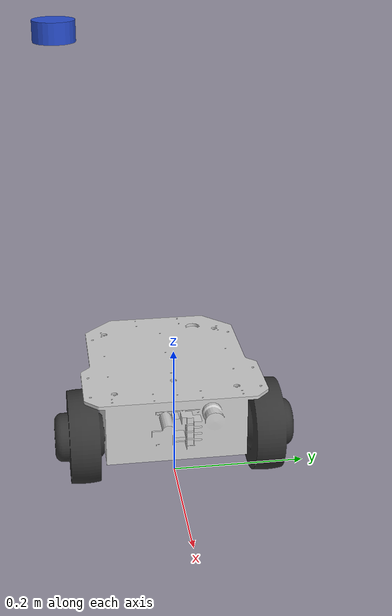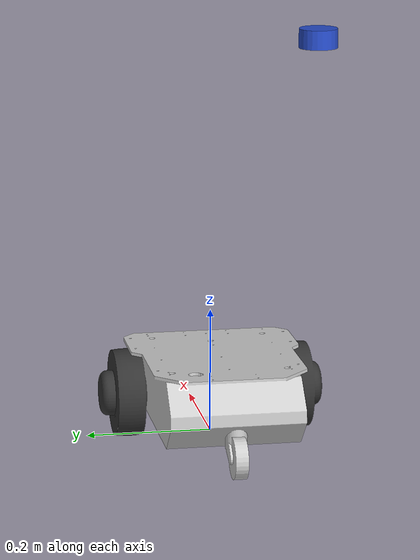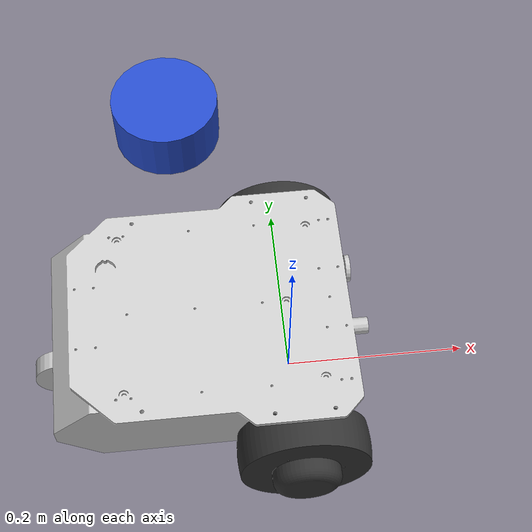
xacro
<?xml version="1.0"?>
<robot name="mega3" xmlns:xacro="http://www.ros.org/wiki/xacro">

  <xacro:include filename="$(find c_megarover_description)/urdf/mega3_base_model.xacro" />
  <xacro:include filename="$(find c_megarover_description)/urdf/mega3.gazebo" />

  <xacro:include filename="$(find c_megarover_description)/urdf/mega3_lidar.xacro" />
  <xacro:include filename="$(find c_megarover_description)/urdf/mega3_lidar.gazebo" />

  <!-- OPTION: LRF TG30 -->
  <!-- OPTION: bumper sensor -->
  <!-- OPTION: camera stay -->
  <!-- OPTION: Intel Realsense depth camera D435i (camera stay required) -->
  <!-- OPTION: AMIR 740 (disabled by default because of interference with camera stay)-->

</robot>

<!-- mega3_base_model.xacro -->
<robot name="mega3" xmlns:xacro="http://www.ros.org/wiki/xacro">

  <xacro:include filename="$(find megarover_description)/urdf/materials.xacro" />

  <link name="base_footprint" />

  <joint name="base_joint" type="fixed">
    <parent link="base_footprint" />
    <child link="base_link" />
    <origin xyz="-0.1 0 0" rpy="0 0 -1.5708" />
  </joint>

  <link name="base_link">
    <inertial>
      <origin xyz="-0.0001512201285105937 -3.420007213019073e-05 0.08388833658828038" rpy="0 0 0" />
      <mass value="11.744482" />
      <inertia ixx="0.091465" iyy="0.06435" izz="0.1253"
        ixy="0.001018" iyz="-0.002369"
        ixz="0.000233" />
    </inertial>
    <visual>
      <origin xyz="0 0 0" rpy="0 0 0" />
      <geometry>
        <mesh filename="$(find megarover_description)/meshes/mega3/base_link.stl" scale="0.001 0.001 0.001" />
      </geometry>
      <material name="silver" />
    </visual>
    <collision>
      <origin xyz="0 0 0" rpy="0 0 0" />
      <geometry>
        <mesh filename="$(find megarover_description)/meshes/mega3/base_link.stl" scale="0.001 0.001 0.001" />
      </geometry>
    </collision>
  </link>

  <joint name="left_wheel_joint" type="continuous">
    <origin xyz="-0.136 0.1 0.07" rpy="0 -1.5708 0" />
    <parent link="base_link" />
    <child link="left_wheel_1" />
    <axis xyz="0.0 0.0 1.0" />
  </joint>

  <link name="left_wheel_1">
    <inertial>
      <origin xyz="0.0 0.0 0.00213" rpy="0 1.5708 0" />
      <mass value="1.239934" />
      <inertia ixx="0.002474" iyy="0.00174" izz="0.00174"
        ixy="0.000" iyz="0.000"
        ixz="-0.000" />
    </inertial>
    <visual>
      <origin xyz="-0.07 -0.1 -0.136" rpy="0 1.5708 0" />
      <geometry>
        <mesh filename="$(find megarover_description)/meshes/mega3/left_wheel_1.stl" scale="0.001 0.001 0.001" />
      </geometry>
      <material name="dark_grey" />
    </visual>
    <collision>
      <origin xyz="-0.07 -0.1 -0.136" rpy="0 1.5708 0" />
      <geometry>
        <mesh filename="$(find megarover_description)/meshes/mega3/left_wheel_1.stl" scale="0.001 0.001 0.001" />
      </geometry>
    </collision>
  </link>

  <joint name="right_wheel_joint" type="continuous">
    <origin xyz="0.136 0.1 0.07" rpy="0 -1.5708 0" />
    <parent link="base_link" />
    <child link="right_wheel_1" />
    <axis xyz="0.0 0.0 1.0" />
  </joint>

  <link name="right_wheel_1">
    <inertial>
      <origin xyz="0 0 -0.00213" rpy="0 1.5708 0" />
      <mass value="1.239934" />
      <inertia ixx="0.002474" iyy="0.00174" izz="0.00174"
        ixy="-0.000" iyz="-0.000"
        ixz="-0.000" />
    </inertial>
    <visual>
      <origin xyz="-0.07 -0.1 0.136" rpy="0 1.5708 0" />
      <geometry>
        <mesh filename="$(find megarover_description)/meshes/mega3/right_wheel_1.stl" scale="0.001 0.001 0.001" />
      </geometry>
      <material name="dark_grey" />
    </visual>
    <collision>
      <origin xyz="-0.07 -0.1 0.136" rpy="0 1.5708 0" />
      <geometry>
        <mesh filename="$(find megarover_description)/meshes/mega3/right_wheel_1.stl" scale="0.001 0.001 0.001" />
      </geometry>
    </collision>
  </link>

</robot>

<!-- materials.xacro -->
<robot name="materials" xmlns:xacro="http://www.ros.org/wiki/xacro">

  <material name="silver">
    <color rgba="0.800 0.800 0.800 1.000" />
  </material>

  <material name="dark_silver">
    <color rgba="0.400 0.400 0.400 1.000" />
  </material>

  <material name="dark_grey">
    <color rgba="0.200 0.200 0.200 1.000" />
  </material>

  <material name="black">
    <color rgba="0.100 0.100 0.100 1.000" />
  </material>
</robot>

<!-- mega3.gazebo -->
<robot name="mega3" xmlns:xacro="http://www.ros.org/wiki/xacro">

  <xacro:property name="body_color" value="Gazebo/Silver" />
  <xacro:property name="wheel_color" value="Gazebo/DarkGrey" />

  <gazebo reference="base_link">
    <material>${body_color}</material>
    <mu1>0.1</mu1>
    <mu2>0.1</mu2>
    <kp>1e6</kp>
    <kd>100.0</kd>
    <minDepth>0.001</minDepth>
    <maxVel>1.0</maxVel>
  </gazebo>

  <gazebo reference="right_wheel_1">
    <mu1>1.0</mu1>
    <mu2>1.0</mu2>
    <fdir1>1 0 0</fdir1>
    <kp>1e6</kp>
    <kd>10.0</kd>
    <minDepth>0.0001</minDepth>
    <maxVel>0.1</maxVel>
    <material>${wheel_color}</material>
  </gazebo>

  <gazebo reference="left_wheel_1">
    <mu1>1.0</mu1>
    <mu2>1.0</mu2>
    <fdir1>1 0 0</fdir1>
    <kp>1e6</kp>
    <kd>10.0</kd>
    <minDepth>0.0001</minDepth>
    <maxVel>0.1</maxVel>
    <material>${wheel_color}</material>
  </gazebo>

  <!-- diff_drive plugin -->
  <gazebo>
    <plugin
          filename="ignition-gazebo-diff-drive-system"
          name="ignition::gazebo::systems::DiffDrive">
      <ros>
      </ros>

      <update_rate>30</update_rate>

      <!-- wheels -->
      <left_joint>left_wheel_joint</left_joint>
      <right_joint>right_wheel_joint</right_joint>

      <!-- kinematics -->
      <wheel_separation>0.242</wheel_separation>
      <wheel_radius>0.07</wheel_radius>

      <!-- limits -->
      <max_wheel_torque>30</max_wheel_torque>
      <max_linear_acceleration>0.033</max_linear_acceleration> <!-- TODO: wheel_accelerationから計算する -->

      <!-- output -->
      <publish_odom>true</publish_odom>
      <publish_odom_tf>true</publish_odom_tf>
      <publish_wheel_tf>false</publish_wheel_tf>

      <odom_topic>odom</odom_topic>
      <frame_id>odom</frame_id>
      <child_frame_id>base_footprint</child_frame_id>

      <topic>/cmd_vel</topic>
      <tf_topic>/tf</tf_topic>

    </plugin>
  </gazebo>

  <!-- joint_state_publisher plugin -->
  <gazebo>
      <plugin
          filename="ignition-gazebo-joint-state-publisher-system"
          name="ignition::gazebo::systems::JointStatePublisher">

          <topic>/joint_states</topic>
          <joint_name>left_wheel_joint</joint_name>
          <joint_name>right_wheel_joint</joint_name>
          <update_rate>30</update_rate>

      </plugin>
  </gazebo>

</robot>

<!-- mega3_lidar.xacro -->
<robot name="mega3" xmlns:xacro="http://www.ros.org/wiki/xacro">

    <link name="livox_frame">
        <visual>
            <geometry>
                <cylinder radius="0.03" length="0.03" />
            </geometry>
        </visual>
        <collision>
            <geometry>
                <cylinder radius="0.030" length="0.03" />
            </geometry>
        </collision>
        <inertial>
            <mass value="0.25" />
            <inertia ixx="0.00021033333"
                ixy="0" ixz="0"
                iyx="0" iyy="0.00021033333"
                iyz="0"
                izx="0" izy="0" izz="0.0001125" />
        </inertial>
    </link>

    <gazebo reference="livox_frame">
        <material>Gazebo/Blue</material>
    </gazebo>

    <joint name="lidar_joint" type="fixed">
        <parent link="base_link" />
        <child link="livox_frame" />
        <origin xyz="0.15 0 0.65" rpy="0 0 0" />
    </joint>

</robot>
